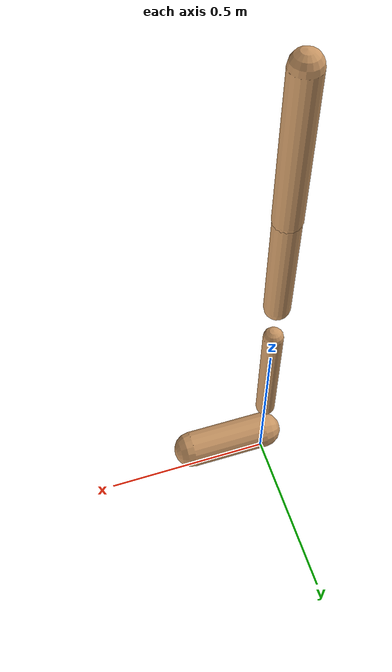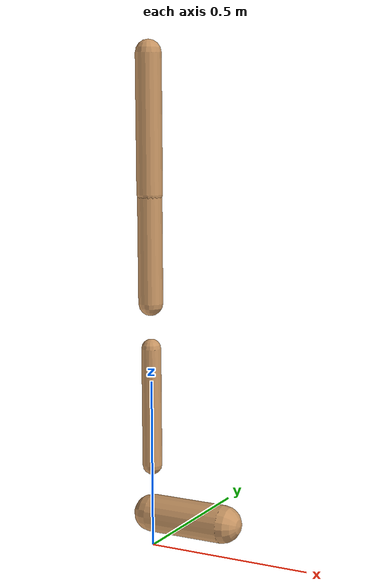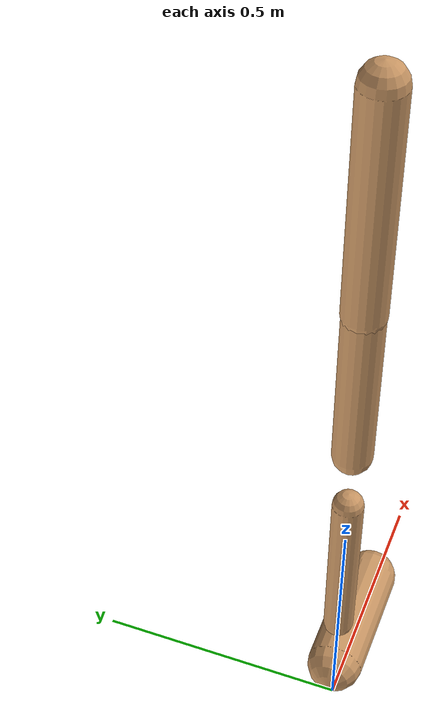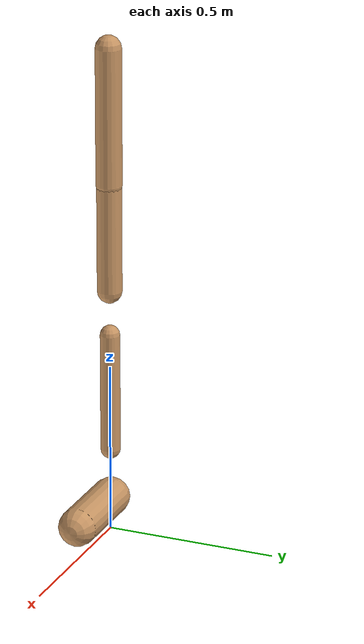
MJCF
<mujoco model="walker2d">
  <compiler angle="degree" coordinate="global" inertiafromgeom="true" />
  <default>
    <joint armature="0.01" damping=".1" limited="true" />
    <geom conaffinity="0" condim="3" contype="1" density="1000" friction="0.8 .1 .1" rgba="0.8 0.6 .4 1" />
  </default>
  <option integrator="RK4" timestep="0.002" />
  <worldbody>

    <body name="torso" pos="0 0 -0.28280592826203316">
      <joint armature="0" axis="1 0 0" damping="0" limited="false" name="ignorex" pos="0 0 0" stiffness="0" type="slide" />
      <joint armature="0" axis="0 0 1" damping="0" limited="false" name="ignorez" pos="0 0 0" ref="1.25" stiffness="0" type="slide" />
      <joint armature="0" axis="0 1 0" damping="0" limited="false" name="ignorey" pos="0 0 0" stiffness="0" type="hinge" />
      <geom fromto="0 0 1.45 0 0 1.05" name="torso_geom" size="0.03773675541911519" type="capsule" />
      <body name="thigh">
        <joint axis="0 -1 0" name="thigh_joint" pos="0 0 1.05" range="-150 0" type="hinge" />
        <geom fromto="0.0 0.0 1.05 0.0 0.0 0.733960702860963" name="thigh_geom" size="0.036101769042032376" type="capsule" />
        <body name="leg" pos="0.0 0.0 0.13396070286096307">
          <joint axis="0 -1 0" name="leg_joint" pos="0 0 0.6" range="-150 0" type="hinge" />
          <geom fromto="0.0 0.0 0.6 0.0 0.0 0.24884522540107007" name="leg_geom" size="0.028881415233625897" type="capsule" />
          <body name="foot" pos="0.0 0.0 0.14884522540107006">
            <joint axis="0 -1 0" name="foot_joint" pos="0 0 0.1" range="-45 45" type="hinge" />
            <geom fromto="-0.0 0.0 0.1 0.2350383156666747 0.0 0.1" name="foot_geom" size="0.055639789112948194" type="capsule" />
          </body>
        </body>
      </body>

      <body name="thigh_left">
        <joint axis="0 -1 0" name="thigh_left_joint" pos="0 0 1.05" range="-150 0" type="hinge" />
        <geom fromto="0.0 0.0 1.05 0.0 0.0 0.733960702860963" name="thigh_left_geom" rgba=".7 .3 .6 1" size="0.036101769042032376" type="capsule" />
        <body name="leg_left" pos="0.0 0.0 0.13396070286096307">
          <joint axis="0 -1 0" name="leg_left_joint" pos="0 0 0.6" range="-150 0" type="hinge" />
          <geom fromto="0.0 0.0 0.6 0.0 0.0 0.24884522540107007" name="leg_left_geom" rgba=".7 .3 .6 1" size="0.028881415233625897" type="capsule" />
          <body name="foot_left" pos="0.0 0.0 0.14884522540107006">
            <joint axis="0 -1 0" name="foot_left_joint" pos="0 0 0.1" range="-45 45" type="hinge" />
            <geom fromto="-0.0 0.0 0.1 0.2350383156666747 0.0 0.1" name="foot_left_geom" rgba=".7 .3 .6 1" size="0.055639789112948194" type="capsule" />
          </body>
        </body>
      </body>
    </body>
  </worldbody>
  <actuator>

    <motor ctrllimited="true" ctrlrange="-1.0 1.0" gear="100" joint="thigh_joint" />
    <motor ctrllimited="true" ctrlrange="-1.0 1.0" gear="100" joint="leg_joint" />
    <motor ctrllimited="true" ctrlrange="-1.0 1.0" gear="100" joint="foot_joint" />
    <motor ctrllimited="true" ctrlrange="-1.0 1.0" gear="100" joint="thigh_left_joint" />
    <motor ctrllimited="true" ctrlrange="-1.0 1.0" gear="100" joint="leg_left_joint" />
    <motor ctrllimited="true" ctrlrange="-1.0 1.0" gear="100" joint="foot_left_joint" />

  </actuator>
</mujoco>
